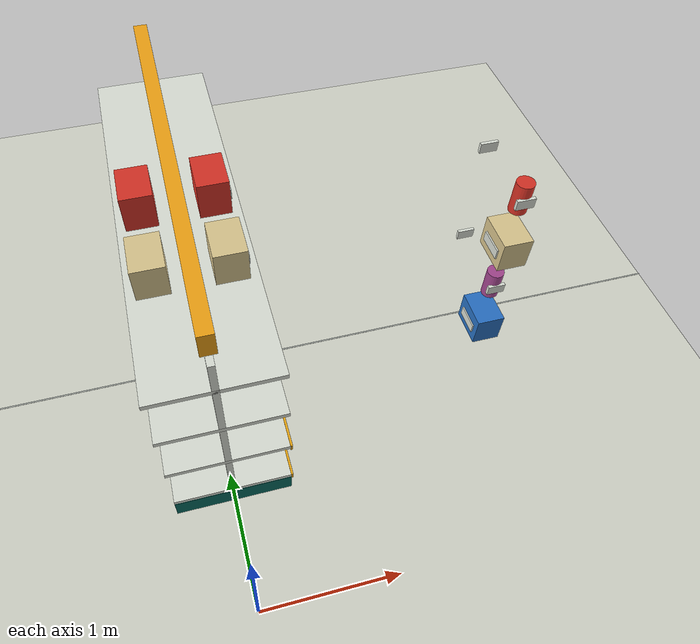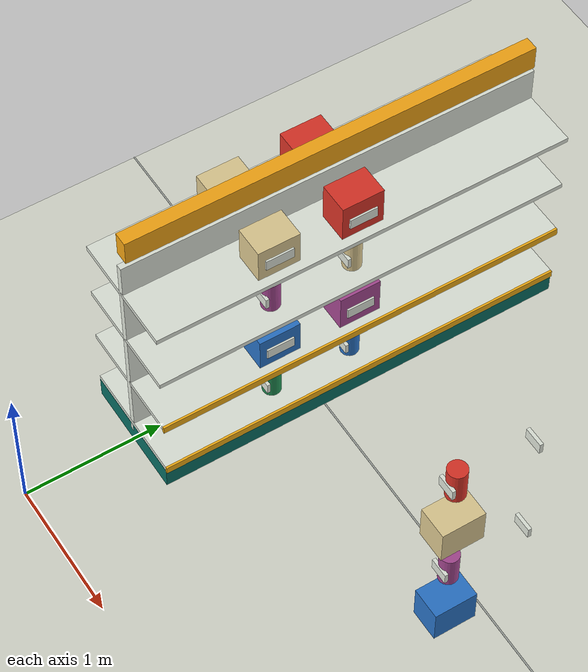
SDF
<sdf version="1.6">
 <world name="convenience_store">
  <model name="ground_plane">
   <static>true</static>
   <link name="ground_link">
    <collision name="ground_collision">
     <geometry><plane><normal>0 0 1</normal><size>100 100</size></plane></geometry>
     <surface><friction><ode><mu>1.0</mu><mu2>1.0</mu2></ode></friction></surface>
    </collision>
    <visual name="ground_visual">
     <geometry><plane><normal>0 0 1</normal><size>100 100</size></plane></geometry>
     <material><ambient>.84 .85 .80 1</ambient><diffuse>.84 .85 .80 1</diffuse></material>
    </visual>
   </link>
  </model>
  <model name="tile_y_14">
   <static>true</static>
   <pose>0 2.0 0.001 0 0 0</pose>
   <link name="body">
    <visual name="body_visual">
     <geometry><box><size>12 0.012 0.001</size></box></geometry>
     <material><ambient>.63 .65 .63 1</ambient><diffuse>.63 .65 .63 1</diffuse></material>
    </visual>
   </link>
  </model>
  <model name="gondola_1_plinth">
   <static>true</static>
   <pose>0.0 2.3 0.08 0 0 0</pose>
   <link name="body">
    <collision name="body_collision">
     <geometry><box><size>0.85 3.0 0.16</size></box></geometry>
     <surface><friction><ode><mu>.8</mu><mu2>.8</mu2></ode></friction></surface>
    </collision>
    <visual name="body_visual">
     <geometry><box><size>0.85 3.0 0.16</size></box></geometry>
     <material><ambient>.03 .43 .39 1</ambient><diffuse>.03 .43 .39 1</diffuse></material>
    </visual>
   </link>
  </model>
  <model name="gondola_1_divider">
   <static>true</static>
   <pose>0.0 2.3 0.95 0 0 0</pose>
   <link name="body">
    <collision name="body_collision">
     <geometry><box><size>0.045 3.0 1.7</size></box></geometry>
     <surface><friction><ode><mu>.8</mu><mu2>.8</mu2></ode></friction></surface>
    </collision>
    <visual name="body_visual">
     <geometry><box><size>0.045 3.0 1.7</size></box></geometry>
     <material><ambient>.88 .90 .86 1</ambient><diffuse>.88 .90 .86 1</diffuse></material>
    </visual>
   </link>
  </model>
  <model name="gondola_1_shelf_0">
   <static>true</static>
   <pose>0.0 2.3 0.1825 0 0 0</pose>
   <link name="body">
    <collision name="body_collision">
     <geometry><box><size>0.85 3.0 0.035</size></box></geometry>
     <surface><friction><ode><mu>.8</mu><mu2>.8</mu2></ode></friction></surface>
    </collision>
    <visual name="body_visual">
     <geometry><box><size>0.85 3.0 0.035</size></box></geometry>
     <material><ambient>.88 .90 .86 1</ambient><diffuse>.88 .90 .86 1</diffuse></material>
    </visual>
   </link>
  </model>
  <model name="gondola_1_price_0_1">
   <static>true</static>
   <pose>0.43 2.3 0.17500000000000002 0 0 0</pose>
   <link name="body">
    <visual name="body_visual">
     <geometry><box><size>0.016 3.0 0.055</size></box></geometry>
     <material><ambient>.95 .68 .08 1</ambient><diffuse>.95 .68 .08 1</diffuse></material>
    </visual>
   </link>
  </model>
  <model name="gondola_1_goods_0_1_1">
   <static>true</static>
   <pose>0.25 1.6999999999999997 0.3225 0 0 0</pose>
   <link name="body">
    <collision name="body_collision">
     <geometry><cylinder><length>0.245</length><radius>0.065</radius></cylinder></geometry>
     <surface><friction><ode><mu>.8</mu><mu2>.8</mu2></ode></friction></surface>
    </collision>
    <visual name="body_visual">
     <geometry><cylinder><length>0.245</length><radius>0.065</radius></cylinder></geometry>
     <material><ambient>.12 .55 .32 1</ambient><diffuse>.12 .55 .32 1</diffuse></material>
    </visual>
   </link>
  </model>
  <model name="gondola_1_goods_0_1_1_label">
   <static>true</static>
   <pose>0.25 1.6379999999999997 0.31 0 0 0</pose>
   <link name="body">
    <visual name="body_visual">
     <geometry><box><size>0.135 0.025 0.08</size></box></geometry>
     <material><ambient>.88 .90 .86 1</ambient><diffuse>.88 .90 .86 1</diffuse></material>
    </visual>
   </link>
  </model>
  <model name="gondola_1_goods_0_1_2">
   <static>true</static>
   <pose>0.25 2.3 0.335 0 0 0</pose>
   <link name="body">
    <collision name="body_collision">
     <geometry><cylinder><length>0.27</length><radius>0.065</radius></cylinder></geometry>
     <surface><friction><ode><mu>.8</mu><mu2>.8</mu2></ode></friction></surface>
    </collision>
    <visual name="body_visual">
     <geometry><cylinder><length>0.27</length><radius>0.065</radius></cylinder></geometry>
     <material><ambient>.16 .45 .78 1</ambient><diffuse>.16 .45 .78 1</diffuse></material>
    </visual>
   </link>
  </model>
  <model name="gondola_1_goods_0_1_2_label">
   <static>true</static>
   <pose>0.25 2.238 0.31 0 0 0</pose>
   <link name="body">
    <visual name="body_visual">
     <geometry><box><size>0.135 0.025 0.08</size></box></geometry>
     <material><ambient>.88 .90 .86 1</ambient><diffuse>.88 .90 .86 1</diffuse></material>
    </visual>
   </link>
  </model>
  <model name="gondola_1_shelf_1">
   <static>true</static>
   <pose>0.0 2.3 0.6325000000000001 0 0 0</pose>
   <link name="body">
    <collision name="body_collision">
     <geometry><box><size>0.85 3.0 0.035</size></box></geometry>
     <surface><friction><ode><mu>.8</mu><mu2>.8</mu2></ode></friction></surface>
    </collision>
    <visual name="body_visual">
     <geometry><box><size>0.85 3.0 0.035</size></box></geometry>
     <material><ambient>.88 .90 .86 1</ambient><diffuse>.88 .90 .86 1</diffuse></material>
    </visual>
   </link>
  </model>
  <model name="gondola_1_goods_1_-1_1">
   <static>true</static>
   <pose>-0.25 1.6999999999999997 0.7775000000000001 0 0 0</pose>
   <link name="body">
    <collision name="body_collision">
     <geometry><box><size>0.22 0.3 0.255</size></box></geometry>
     <surface><friction><ode><mu>.8</mu><mu2>.8</mu2></ode></friction></surface>
    </collision>
    <visual name="body_visual">
     <geometry><box><size>0.22 0.3 0.255</size></box></geometry>
     <material><ambient>.16 .45 .78 1</ambient><diffuse>.16 .45 .78 1</diffuse></material>
    </visual>
   </link>
  </model>
  <model name="gondola_1_goods_1_-1_2">
   <static>true</static>
   <pose>-0.25 2.3 0.79 0 0 0</pose>
   <link name="body">
    <collision name="body_collision">
     <geometry><box><size>0.22 0.3 0.28</size></box></geometry>
     <surface><friction><ode><mu>.8</mu><mu2>.8</mu2></ode></friction></surface>
    </collision>
    <visual name="body_visual">
     <geometry><box><size>0.22 0.3 0.28</size></box></geometry>
     <material><ambient>.65 .28 .57 1</ambient><diffuse>.65 .28 .57 1</diffuse></material>
    </visual>
   </link>
  </model>
  <model name="gondola_1_price_1_1">
   <static>true</static>
   <pose>0.43 2.3 0.625 0 0 0</pose>
   <link name="body">
    <visual name="body_visual">
     <geometry><box><size>0.016 3.0 0.055</size></box></geometry>
     <material><ambient>.95 .68 .08 1</ambient><diffuse>.95 .68 .08 1</diffuse></material>
    </visual>
   </link>
  </model>
  <model name="gondola_1_goods_1_1_1">
   <static>true</static>
   <pose>0.25 1.6999999999999997 0.7775000000000001 0 0 0</pose>
   <link name="body">
    <collision name="body_collision">
     <geometry><box><size>0.22 0.3 0.255</size></box></geometry>
     <surface><friction><ode><mu>.8</mu><mu2>.8</mu2></ode></friction></surface>
    </collision>
    <visual name="body_visual">
     <geometry><box><size>0.22 0.3 0.255</size></box></geometry>
     <material><ambient>.16 .45 .78 1</ambient><diffuse>.16 .45 .78 1</diffuse></material>
    </visual>
   </link>
  </model>
  <model name="gondola_1_goods_1_1_1_label">
   <static>true</static>
   <pose>0.366 1.6999999999999997 0.77 0 0 0</pose>
   <link name="body">
    <visual name="body_visual">
     <geometry><box><size>0.012 0.2 0.08</size></box></geometry>
     <material><ambient>.88 .90 .86 1</ambient><diffuse>.88 .90 .86 1</diffuse></material>
    </visual>
   </link>
  </model>
  <model name="gondola_1_goods_1_1_2">
   <static>true</static>
   <pose>0.25 2.3 0.79 0 0 0</pose>
   <link name="body">
    <collision name="body_collision">
     <geometry><box><size>0.22 0.3 0.28</size></box></geometry>
     <surface><friction><ode><mu>.8</mu><mu2>.8</mu2></ode></friction></surface>
    </collision>
    <visual name="body_visual">
     <geometry><box><size>0.22 0.3 0.28</size></box></geometry>
     <material><ambient>.65 .28 .57 1</ambient><diffuse>.65 .28 .57 1</diffuse></material>
    </visual>
   </link>
  </model>
  <model name="gondola_1_goods_1_1_2_label">
   <static>true</static>
   <pose>0.366 2.3 0.77 0 0 0</pose>
   <link name="body">
    <visual name="body_visual">
     <geometry><box><size>0.012 0.2 0.08</size></box></geometry>
     <material><ambient>.88 .90 .86 1</ambient><diffuse>.88 .90 .86 1</diffuse></material>
    </visual>
   </link>
  </model>
  <model name="gondola_1_shelf_2">
   <static>true</static>
   <pose>0.0 2.3 1.0825 0 0 0</pose>
   <link name="body">
    <collision name="body_collision">
     <geometry><box><size>0.85 3.0 0.035</size></box></geometry>
     <surface><friction><ode><mu>.8</mu><mu2>.8</mu2></ode></friction></surface>
    </collision>
    <visual name="body_visual">
     <geometry><box><size>0.85 3.0 0.035</size></box></geometry>
     <material><ambient>.88 .90 .86 1</ambient><diffuse>.88 .90 .86 1</diffuse></material>
    </visual>
   </link>
  </model>
  <model name="gondola_1_goods_2_-1_1">
   <static>true</static>
   <pose>-0.25 1.6999999999999997 1.2225000000000001 0 0 0</pose>
   <link name="body">
    <collision name="body_collision">
     <geometry><cylinder><length>0.245</length><radius>0.065</radius></cylinder></geometry>
     <surface><friction><ode><mu>.8</mu><mu2>.8</mu2></ode></friction></surface>
    </collision>
    <visual name="body_visual">
     <geometry><cylinder><length>0.245</length><radius>0.065</radius></cylinder></geometry>
     <material><ambient>.65 .28 .57 1</ambient><diffuse>.65 .28 .57 1</diffuse></material>
    </visual>
   </link>
  </model>
  <model name="gondola_1_goods_2_-1_1_label">
   <static>true</static>
   <pose>-0.25 1.6379999999999997 1.2100000000000002 0 0 0</pose>
   <link name="body">
    <visual name="body_visual">
     <geometry><box><size>0.135 0.025 0.08</size></box></geometry>
     <material><ambient>.88 .90 .86 1</ambient><diffuse>.88 .90 .86 1</diffuse></material>
    </visual>
   </link>
  </model>
  <model name="gondola_1_goods_2_-1_2">
   <static>true</static>
   <pose>-0.25 2.3 1.235 0 0 0</pose>
   <link name="body">
    <collision name="body_collision">
     <geometry><cylinder><length>0.27</length><radius>0.065</radius></cylinder></geometry>
     <surface><friction><ode><mu>.8</mu><mu2>.8</mu2></ode></friction></surface>
    </collision>
    <visual name="body_visual">
     <geometry><cylinder><length>0.27</length><radius>0.065</radius></cylinder></geometry>
     <material><ambient>.87 .79 .57 1</ambient><diffuse>.87 .79 .57 1</diffuse></material>
    </visual>
   </link>
  </model>
  <model name="gondola_1_goods_2_-1_2_label">
   <static>true</static>
   <pose>-0.25 2.238 1.2100000000000002 0 0 0</pose>
   <link name="body">
    <visual name="body_visual">
     <geometry><box><size>0.135 0.025 0.08</size></box></geometry>
     <material><ambient>.88 .90 .86 1</ambient><diffuse>.88 .90 .86 1</diffuse></material>
    </visual>
   </link>
  </model>
  <model name="gondola_1_goods_2_1_1">
   <static>true</static>
   <pose>0.25 1.6999999999999997 1.2225000000000001 0 0 0</pose>
   <link name="body">
    <collision name="body_collision">
     <geometry><cylinder><length>0.245</length><radius>0.065</radius></cylinder></geometry>
     <surface><friction><ode><mu>.8</mu><mu2>.8</mu2></ode></friction></surface>
    </collision>
    <visual name="body_visual">
     <geometry><cylinder><length>0.245</length><radius>0.065</radius></cylinder></geometry>
     <material><ambient>.65 .28 .57 1</ambient><diffuse>.65 .28 .57 1</diffuse></material>
    </visual>
   </link>
  </model>
  <model name="gondola_1_goods_2_1_1_label">
   <static>true</static>
   <pose>0.25 1.6379999999999997 1.2100000000000002 0 0 0</pose>
   <link name="body">
    <visual name="body_visual">
     <geometry><box><size>0.135 0.025 0.08</size></box></geometry>
     <material><ambient>.88 .90 .86 1</ambient><diffuse>.88 .90 .86 1</diffuse></material>
    </visual>
   </link>
  </model>
  <model name="gondola_1_goods_2_1_2">
   <static>true</static>
   <pose>0.25 2.3 1.235 0 0 0</pose>
   <link name="body">
    <collision name="body_collision">
     <geometry><cylinder><length>0.27</length><radius>0.065</radius></cylinder></geometry>
     <surface><friction><ode><mu>.8</mu><mu2>.8</mu2></ode></friction></surface>
    </collision>
    <visual name="body_visual">
     <geometry><cylinder><length>0.27</length><radius>0.065</radius></cylinder></geometry>
     <material><ambient>.87 .79 .57 1</ambient><diffuse>.87 .79 .57 1</diffuse></material>
    </visual>
   </link>
  </model>
  <model name="gondola_1_goods_2_1_2_label">
   <static>true</static>
   <pose>0.25 2.238 1.2100000000000002 0 0 0</pose>
   <link name="body">
    <visual name="body_visual">
     <geometry><box><size>0.135 0.025 0.08</size></box></geometry>
     <material><ambient>.88 .90 .86 1</ambient><diffuse>.88 .90 .86 1</diffuse></material>
    </visual>
   </link>
  </model>
  <model name="gondola_1_shelf_3">
   <static>true</static>
   <pose>0.0 2.3 1.5325 0 0 0</pose>
   <link name="body">
    <collision name="body_collision">
     <geometry><box><size>0.85 3.0 0.035</size></box></geometry>
     <surface><friction><ode><mu>.8</mu><mu2>.8</mu2></ode></friction></surface>
    </collision>
    <visual name="body_visual">
     <geometry><box><size>0.85 3.0 0.035</size></box></geometry>
     <material><ambient>.88 .90 .86 1</ambient><diffuse>.88 .90 .86 1</diffuse></material>
    </visual>
   </link>
  </model>
  <model name="gondola_1_goods_3_-1_1">
   <static>true</static>
   <pose>-0.25 1.6999999999999997 1.6775 0 0 0</pose>
   <link name="body">
    <collision name="body_collision">
     <geometry><box><size>0.22 0.3 0.255</size></box></geometry>
     <surface><friction><ode><mu>.8</mu><mu2>.8</mu2></ode></friction></surface>
    </collision>
    <visual name="body_visual">
     <geometry><box><size>0.22 0.3 0.255</size></box></geometry>
     <material><ambient>.87 .79 .57 1</ambient><diffuse>.87 .79 .57 1</diffuse></material>
    </visual>
   </link>
  </model>
  <model name="gondola_1_goods_3_-1_2">
   <static>true</static>
   <pose>-0.25 2.3 1.69 0 0 0</pose>
   <link name="body">
    <collision name="body_collision">
     <geometry><box><size>0.22 0.3 0.28</size></box></geometry>
     <surface><friction><ode><mu>.8</mu><mu2>.8</mu2></ode></friction></surface>
    </collision>
    <visual name="body_visual">
     <geometry><box><size>0.22 0.3 0.28</size></box></geometry>
     <material><ambient>.86 .20 .15 1</ambient><diffuse>.86 .20 .15 1</diffuse></material>
    </visual>
   </link>
  </model>
  <model name="gondola_1_goods_3_1_1">
   <static>true</static>
   <pose>0.25 1.6999999999999997 1.6775 0 0 0</pose>
   <link name="body">
    <collision name="body_collision">
     <geometry><box><size>0.22 0.3 0.255</size></box></geometry>
     <surface><friction><ode><mu>.8</mu><mu2>.8</mu2></ode></friction></surface>
    </collision>
    <visual name="body_visual">
     <geometry><box><size>0.22 0.3 0.255</size></box></geometry>
     <material><ambient>.87 .79 .57 1</ambient><diffuse>.87 .79 .57 1</diffuse></material>
    </visual>
   </link>
  </model>
  <model name="gondola_1_goods_3_1_1_label">
   <static>true</static>
   <pose>0.366 1.6999999999999997 1.67 0 0 0</pose>
   <link name="body">
    <visual name="body_visual">
     <geometry><box><size>0.012 0.2 0.08</size></box></geometry>
     <material><ambient>.88 .90 .86 1</ambient><diffuse>.88 .90 .86 1</diffuse></material>
    </visual>
   </link>
  </model>
  <model name="gondola_1_goods_3_1_2">
   <static>true</static>
   <pose>0.25 2.3 1.69 0 0 0</pose>
   <link name="body">
    <collision name="body_collision">
     <geometry><box><size>0.22 0.3 0.28</size></box></geometry>
     <surface><friction><ode><mu>.8</mu><mu2>.8</mu2></ode></friction></surface>
    </collision>
    <visual name="body_visual">
     <geometry><box><size>0.22 0.3 0.28</size></box></geometry>
     <material><ambient>.86 .20 .15 1</ambient><diffuse>.86 .20 .15 1</diffuse></material>
    </visual>
   </link>
  </model>
  <model name="gondola_1_goods_3_1_2_label">
   <static>true</static>
   <pose>0.366 2.3 1.67 0 0 0</pose>
   <link name="body">
    <visual name="body_visual">
     <geometry><box><size>0.012 0.2 0.08</size></box></geometry>
     <material><ambient>.88 .90 .86 1</ambient><diffuse>.88 .90 .86 1</diffuse></material>
    </visual>
   </link>
  </model>
  <model name="gondola_1_header">
   <static>true</static>
   <pose>0.0 2.3 1.96 0 0 0</pose>
   <link name="body">
    <collision name="body_collision">
     <geometry><box><size>0.1 2.95 0.18</size></box></geometry>
     <surface><friction><ode><mu>.8</mu><mu2>.8</mu2></ode></friction></surface>
    </collision>
    <visual name="body_visual">
     <geometry><box><size>0.1 2.95 0.18</size></box></geometry>
     <material><ambient>.96 .65 .08 1</ambient><diffuse>.96 .65 .08 1</diffuse></material>
    </visual>
   </link>
  </model>
  <model name="gondola_2_goods_0_-1_1">
   <static>true</static>
   <pose>2.25 1.6999999999999997 0.3275 0 0 0</pose>
   <link name="body">
    <collision name="body_collision">
     <geometry><box><size>0.22 0.3 0.255</size></box></geometry>
     <surface><friction><ode><mu>.8</mu><mu2>.8</mu2></ode></friction></surface>
    </collision>
    <visual name="body_visual">
     <geometry><box><size>0.22 0.3 0.255</size></box></geometry>
     <material><ambient>.16 .45 .78 1</ambient><diffuse>.16 .45 .78 1</diffuse></material>
    </visual>
   </link>
  </model>
  <model name="gondola_2_goods_0_-1_1_label">
   <static>true</static>
   <pose>2.134 1.6999999999999997 0.32 0 0 0</pose>
   <link name="body">
    <visual name="body_visual">
     <geometry><box><size>0.012 0.2 0.08</size></box></geometry>
     <material><ambient>.88 .90 .86 1</ambient><diffuse>.88 .90 .86 1</diffuse></material>
    </visual>
   </link>
  </model>
  <model name="gondola_2_goods_1_-1_1">
   <static>true</static>
   <pose>2.25 1.6999999999999997 0.7725 0 0 0</pose>
   <link name="body">
    <collision name="body_collision">
     <geometry><cylinder><length>0.245</length><radius>0.065</radius></cylinder></geometry>
     <surface><friction><ode><mu>.8</mu><mu2>.8</mu2></ode></friction></surface>
    </collision>
    <visual name="body_visual">
     <geometry><cylinder><length>0.245</length><radius>0.065</radius></cylinder></geometry>
     <material><ambient>.65 .28 .57 1</ambient><diffuse>.65 .28 .57 1</diffuse></material>
    </visual>
   </link>
  </model>
  <model name="gondola_2_goods_1_-1_1_label">
   <static>true</static>
   <pose>2.25 1.6379999999999997 0.76 0 0 0</pose>
   <link name="body">
    <visual name="body_visual">
     <geometry><box><size>0.135 0.025 0.08</size></box></geometry>
     <material><ambient>.88 .90 .86 1</ambient><diffuse>.88 .90 .86 1</diffuse></material>
    </visual>
   </link>
  </model>
  <model name="gondola_2_goods_1_-1_2_label">
   <static>true</static>
   <pose>2.25 2.238 0.76 0 0 0</pose>
   <link name="body">
    <visual name="body_visual">
     <geometry><box><size>0.135 0.025 0.08</size></box></geometry>
     <material><ambient>.88 .90 .86 1</ambient><diffuse>.88 .90 .86 1</diffuse></material>
    </visual>
   </link>
  </model>
  <model name="gondola_2_goods_2_-1_1">
   <static>true</static>
   <pose>2.25 1.6999999999999997 1.2275 0 0 0</pose>
   <link name="body">
    <collision name="body_collision">
     <geometry><box><size>0.22 0.3 0.255</size></box></geometry>
     <surface><friction><ode><mu>.8</mu><mu2>.8</mu2></ode></friction></surface>
    </collision>
    <visual name="body_visual">
     <geometry><box><size>0.22 0.3 0.255</size></box></geometry>
     <material><ambient>.87 .79 .57 1</ambient><diffuse>.87 .79 .57 1</diffuse></material>
    </visual>
   </link>
  </model>
  <model name="gondola_2_goods_2_-1_1_label">
   <static>true</static>
   <pose>2.134 1.6999999999999997 1.2200000000000002 0 0 0</pose>
   <link name="body">
    <visual name="body_visual">
     <geometry><box><size>0.012 0.2 0.08</size></box></geometry>
     <material><ambient>.88 .90 .86 1</ambient><diffuse>.88 .90 .86 1</diffuse></material>
    </visual>
   </link>
  </model>
  <model name="gondola_2_goods_3_-1_1">
   <static>true</static>
   <pose>2.25 1.6999999999999997 1.6725 0 0 0</pose>
   <link name="body">
    <collision name="body_collision">
     <geometry><cylinder><length>0.245</length><radius>0.065</radius></cylinder></geometry>
     <surface><friction><ode><mu>.8</mu><mu2>.8</mu2></ode></friction></surface>
    </collision>
    <visual name="body_visual">
     <geometry><cylinder><length>0.245</length><radius>0.065</radius></cylinder></geometry>
     <material><ambient>.86 .20 .15 1</ambient><diffuse>.86 .20 .15 1</diffuse></material>
    </visual>
   </link>
  </model>
  <model name="gondola_2_goods_3_-1_1_label">
   <static>true</static>
   <pose>2.25 1.6379999999999997 1.6600000000000001 0 0 0</pose>
   <link name="body">
    <visual name="body_visual">
     <geometry><box><size>0.135 0.025 0.08</size></box></geometry>
     <material><ambient>.88 .90 .86 1</ambient><diffuse>.88 .90 .86 1</diffuse></material>
    </visual>
   </link>
  </model>
  <model name="gondola_2_goods_3_-1_2_label">
   <static>true</static>
   <pose>2.25 2.238 1.6600000000000001 0 0 0</pose>
   <link name="body">
    <visual name="body_visual">
     <geometry><box><size>0.135 0.025 0.08</size></box></geometry>
     <material><ambient>.88 .90 .86 1</ambient><diffuse>.88 .90 .86 1</diffuse></material>
    </visual>
   </link>
  </model>
 </world>
</sdf>
